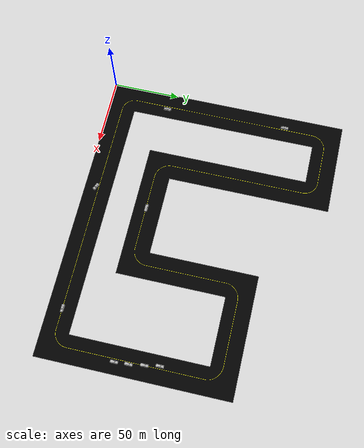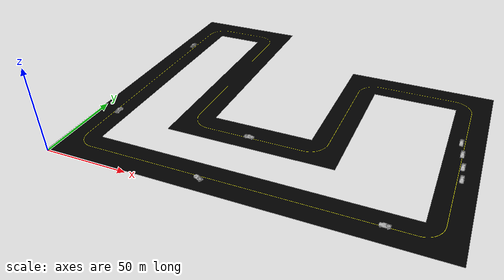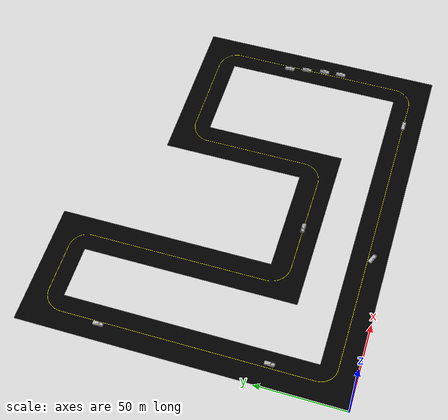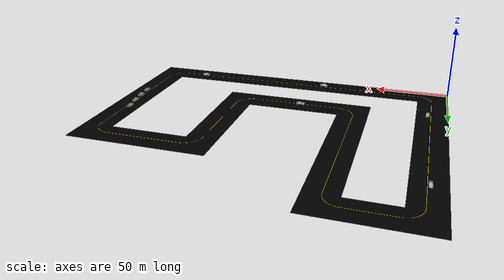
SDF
<sdf version="1.6">
 <world name="default">
  <light name="sun" type="directional">
   <pose>0 0 10 0 -0 0</pose>
   <diffuse>0.8 0.8 0.8 1</diffuse>
   <specular>0.2 0.2 0.2 1</specular>
   <attenuation>
    <range>1000</range>
    <constant>0.9</constant>
    <linear>0.01</linear>
    <quadratic>0.001</quadratic>
   </attenuation>
   <direction>-0.5 0.1 -0.9</direction>
  </light>
  <model name="LineTrack">
   <pose>0 0 1 0 -0 0</pose>
   <static>1</static>
   <link name="link">
    <inertial><mass>1000</mass></inertial>
    <collision name="collision">
     <geometry><mesh><uri>model://LineTrack/PISTA4.dae</uri></mesh></geometry>
    </collision>
    <visual name="visual"><geometry><mesh><uri>model://LineTrack/PISTA4.dae</uri></mesh></geometry></visual>
   </link>
  </model>
  <gravity>0 0 -9.8</gravity>
  <magnetic_field>6e-06 2.3e-05 -4.2e-05</magnetic_field>
  <atmosphere type="adiabatic"/>
  <physics name="default_physics" default="0" type="ode">
   <max_step_size>0.001</max_step_size>
   <real_time_factor>1</real_time_factor>
   <real_time_update_rate>1000</real_time_update_rate>
  </physics>
  <scene><ambient>0.4 0.4 0.4 1</ambient><background>0.7 0.7 0.7 1</background><shadows>1</shadows></scene>
  <spherical_coordinates>
   <surface_model>EARTH_WGS84</surface_model>
   <latitude_deg>0</latitude_deg>
   <longitude_deg>0</longitude_deg>
   <elevation>0</elevation>
   <heading_deg>0</heading_deg>
  </spherical_coordinates>
  <model name="pickup">
   <static>1</static>
   <link name="link">
    <collision name="collision">
     <pose>0 0 0 0 0 -1.5708</pose>
     <geometry><mesh><uri>model://pickup/meshes/pickup.dae</uri></mesh></geometry>
    </collision>
    <visual name="visual">
     <pose>0 0 0 0 0 -1.5708</pose>
     <geometry><mesh><uri>model://pickup/meshes/pickup.dae</uri></mesh></geometry>
    </visual>
   </link>
   <pose>88.4812 8.33932 1.03363 0 -0 2.73572</pose>
  </model>
  <model name="pickup_0">
   <static>1</static>
   <link name="link">
    <collision name="collision">
     <pose>0 0 0 0 0 -1.5708</pose>
     <geometry><mesh><uri>model://pickup/meshes/pickup.dae</uri></mesh></geometry>
    </collision>
    <visual name="visual">
     <pose>0 0 0 0 0 -1.5708</pose>
     <geometry><mesh><uri>model://pickup/meshes/pickup.dae</uri></mesh></geometry>
    </visual>
   </link>
   <pose>9.19024 136.634 1.09759 0 -0 1.57812</pose>
  </model>
  <model name="pickup_1">
   <static>1</static>
   <link name="link">
    <collision name="collision">
     <pose>0 0 0 0 0 -1.5708</pose>
     <geometry><mesh><uri>model://pickup/meshes/pickup.dae</uri></mesh></geometry>
    </collision>
    <visual name="visual">
     <pose>0 0 0 0 0 -1.5708</pose>
     <geometry><mesh><uri>model://pickup/meshes/pickup.dae</uri></mesh></geometry>
    </visual>
   </link>
   <pose>12.8902 44.9376 1.04314 0 -0 1.5537</pose>
  </model>
  <model name="pickup_2">
   <static>1</static>
   <link name="link">
    <collision name="collision">
     <pose>0 0 0 0 0 -1.5708</pose>
     <geometry><mesh><uri>model://pickup/meshes/pickup.dae</uri></mesh></geometry>
    </collision>
    <visual name="visual">
     <pose>0 0 0 0 0 -1.5708</pose>
     <geometry><mesh><uri>model://pickup/meshes/pickup.dae</uri></mesh></geometry>
    </visual>
   </link>
   <pose>97.0874 49.0873 1.0221 0 -0 0</pose>
  </model>
  <model name="pickup_3">
   <static>1</static>
   <link name="link">
    <collision name="collision">
     <pose>0 0 0 0 0 -1.5708</pose>
     <geometry><mesh><uri>model://pickup/meshes/pickup.dae</uri></mesh></geometry>
    </collision>
    <visual name="visual">
     <pose>0 0 0 0 0 -1.5708</pose>
     <geometry><mesh><uri>model://pickup/meshes/pickup.dae</uri></mesh></geometry>
    </visual>
   </link>
   <pose>183.177 10.4705 1.00407 0 -0 3.13115</pose>
  </model>
  <model name="pickup_4">
   <static>1</static>
   <link name="link">
    <collision name="collision">
     <pose>0 0 0 0 0 -1.5708</pose>
     <geometry><mesh><uri>model://pickup/meshes/pickup.dae</uri></mesh></geometry>
    </collision>
    <visual name="visual">
     <pose>0 0 0 0 0 -1.5708</pose>
     <geometry><mesh><uri>model://pickup/meshes/pickup.dae</uri></mesh></geometry>
    </visual>
   </link>
   <pose>207.276 86.4294 1.02796 0 0 -1.56719</pose>
  </model>
  <model name="pickup_5">
   <static>1</static>
   <link name="link">
    <collision name="collision">
     <pose>0 0 0 0 0 -1.5708</pose>
     <geometry><mesh><uri>model://pickup/meshes/pickup.dae</uri></mesh></geometry>
    </collision>
    <visual name="visual">
     <pose>0 0 0 0 0 -1.5708</pose>
     <geometry><mesh><uri>model://pickup/meshes/pickup.dae</uri></mesh></geometry>
    </visual>
   </link>
   <pose>209.115 76.0673 1.06028 0 0 -1.55938</pose>
  </model>
  <model name="pickup_6">
   <static>1</static>
   <link name="link">
    <collision name="collision">
     <pose>0 0 0 0 0 -1.5708</pose>
     <geometry><mesh><uri>model://pickup/meshes/pickup.dae</uri></mesh></geometry>
    </collision>
    <visual name="visual">
     <pose>0 0 0 0 0 -1.5708</pose>
     <geometry><mesh><uri>model://pickup/meshes/pickup.dae</uri></mesh></geometry>
    </visual>
   </link>
   <pose>210.755 65.3256 1.00428 0 0 -1.58089</pose>
  </model>
  <model name="pickup_7">
   <static>1</static>
   <link name="link">
    <collision name="collision">
     <pose>0 0 0 0 0 -1.5708</pose>
     <geometry><mesh><uri>model://pickup/meshes/pickup.dae</uri></mesh></geometry>
    </collision>
    <visual name="visual">
     <pose>0 0 0 0 0 -1.5708</pose>
     <geometry><mesh><uri>model://pickup/meshes/pickup.dae</uri></mesh></geometry>
    </visual>
   </link>
   <pose>211.39 55.3041 1.02287 0 0 -1.57466</pose>
  </model>
 </world>
</sdf>
